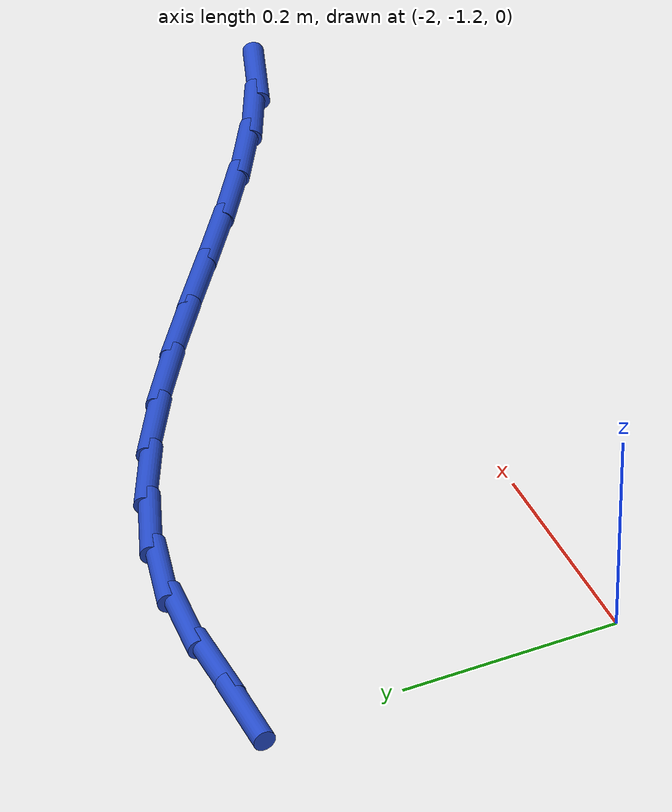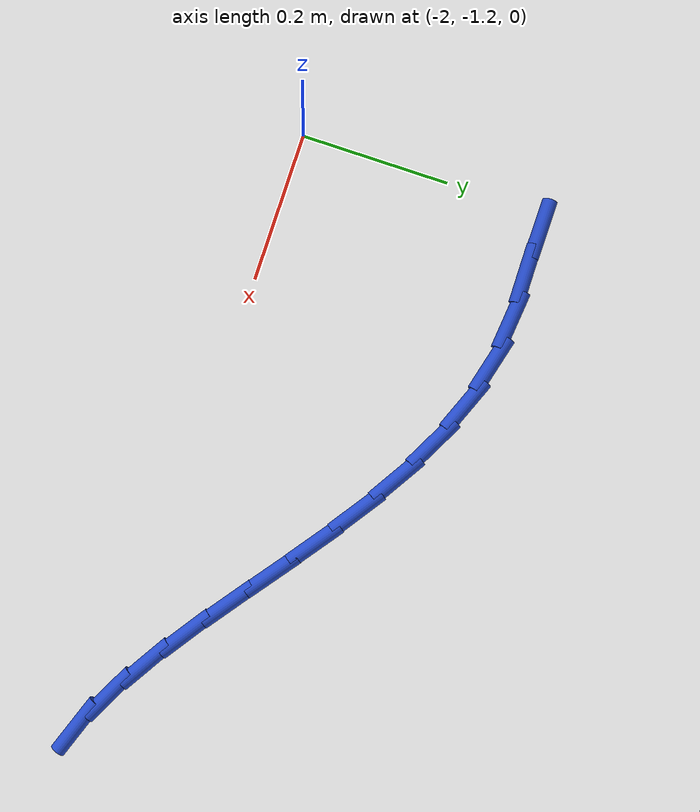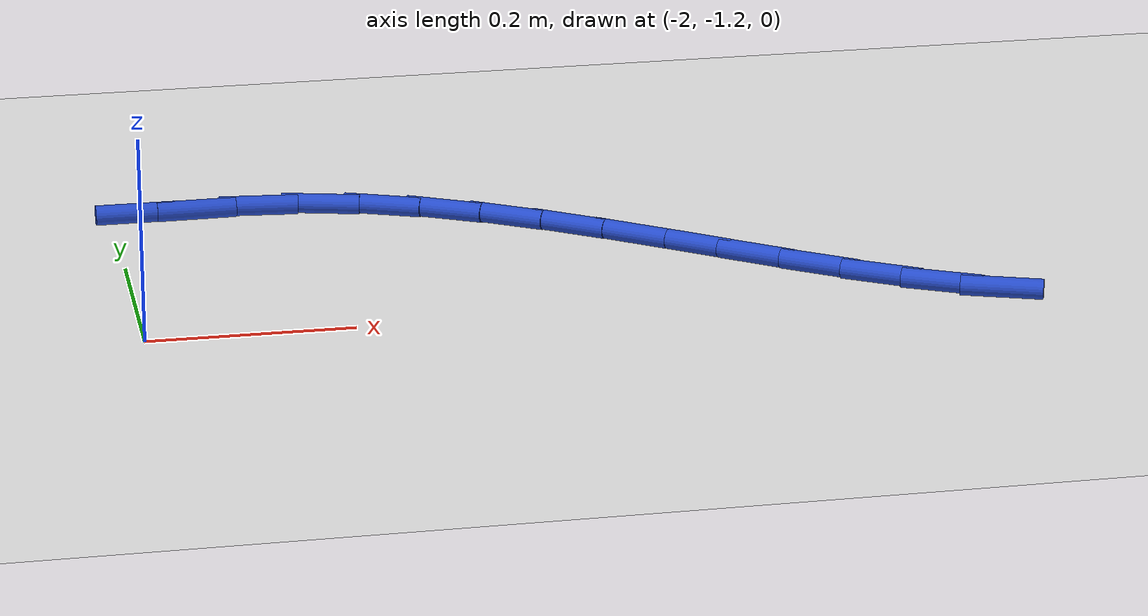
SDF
<sdf version="1.6">
 <world name="default">
  <model name="ground_plane">
   <static>1</static>
   <link name="link">
    <collision name="collision">
     <geometry><plane><normal>0 0 1</normal><size>100 100</size></plane></geometry>
     <surface><friction><ode><mu>100</mu><mu2>50</mu2></ode></friction></surface>
    </collision>
    <visual name="visual">
     <cast_shadows>0</cast_shadows>
     <geometry><plane><normal>0 0 1</normal><size>100 100</size></plane></geometry>
     <material>
      <script><uri>file://media/materials/scripts/gazebo.material</uri><name>Gazebo/WhiteGlow</name></script>
     </material>
    </visual>
   </link>
  </model>
  <model name="line">
   <link name="link_76">
    <pose>-1.9775998268561816 -0.866477955668696 0.01 0 1.57 -0.0059039084641443204</pose>
    <collision name="collision">
     <geometry><cylinder><radius>0.01</radius><length>0.08</length></cylinder></geometry>
    </collision>
    <visual name="visual">
     <material>
      <script><name>Gazebo/Blue</name><uri>file://media/materials/scripts/gazebo.material</uri></script>
     </material>
     <geometry><cylinder><radius>0.01</radius><length>0.08</length></cylinder></geometry>
    </visual>
   </link>
   <link name="link_77">
    <pose>-1.9158166465137412 -0.8668427221481879 0.01 0 1.57 0.011254242782377728</pose>
    <collision name="collision">
     <geometry><cylinder><radius>0.01</radius><length>0.08</length></cylinder></geometry>
    </collision>
    <visual name="visual">
     <material>
      <script><name>Gazebo/Blue</name><uri>file://media/materials/scripts/gazebo.material</uri></script>
     </material>
     <geometry><cylinder><radius>0.01</radius><length>0.08</length></cylinder></geometry>
    </visual>
   </link>
   <link name="link_78">
    <pose>-1.8523981307699697 -0.8661289646404935 0.01 0 1.57 -0.0977586956036715</pose>
    <collision name="collision">
     <geometry><cylinder><radius>0.01</radius><length>0.08</length></cylinder></geometry>
    </collision>
    <visual name="visual">
     <material>
      <script><name>Gazebo/Blue</name><uri>file://media/materials/scripts/gazebo.material</uri></script>
     </material>
     <geometry><cylinder><radius>0.01</radius><length>0.08</length></cylinder></geometry>
    </visual>
   </link>
   <link name="link_79">
    <pose>-1.7895672068124755 -0.8722908756344946 0.01 0 1.57 -0.2524339393090089</pose>
    <collision name="collision">
     <geometry><cylinder><radius>0.01</radius><length>0.08</length></cylinder></geometry>
    </collision>
    <visual name="visual">
     <material>
      <script><name>Gazebo/Blue</name><uri>file://media/materials/scripts/gazebo.material</uri></script>
     </material>
     <geometry><cylinder><radius>0.01</radius><length>0.08</length></cylinder></geometry>
    </visual>
   </link>
   <link name="link_80">
    <pose>-1.7282776958101271 -0.8880996573367588 0.01 0 1.57 -0.38137439897423137</pose>
    <collision name="collision">
     <geometry><cylinder><radius>0.01</radius><length>0.08</length></cylinder></geometry>
    </collision>
    <visual name="visual">
     <material>
      <script><name>Gazebo/Blue</name><uri>file://media/materials/scripts/gazebo.material</uri></script>
     </material>
     <geometry><cylinder><radius>0.01</radius><length>0.08</length></cylinder></geometry>
    </visual>
   </link>
   <link name="link_81">
    <pose>-1.6684466414271915 -0.9120923442389942 0.01 0 1.57 -0.4818976434798315</pose>
    <collision name="collision">
     <geometry><cylinder><radius>0.01</radius><length>0.08</length></cylinder></geometry>
    </collision>
    <visual name="visual">
     <material>
      <script><name>Gazebo/Blue</name><uri>file://media/materials/scripts/gazebo.material</uri></script>
     </material>
     <geometry><cylinder><radius>0.01</radius><length>0.08</length></cylinder></geometry>
    </visual>
   </link>
   <link name="link_82">
    <pose>-1.6099607207991675 -0.9426819548553529 0.01 0 1.57 -0.5562816230912501</pose>
    <collision name="collision">
     <geometry><cylinder><radius>0.01</radius><length>0.08</length></cylinder></geometry>
    </collision>
    <visual name="visual">
     <material>
      <script><name>Gazebo/Blue</name><uri>file://media/materials/scripts/gazebo.material</uri></script>
     </material>
     <geometry><cylinder><radius>0.01</radius><length>0.08</length></cylinder></geometry>
    </visual>
   </link>
   <link name="link_83">
    <pose>-1.5527066110615513 -0.9782815076999875 0.01 0 1.57 -0.6074615409673364</pose>
    <collision name="collision">
     <geometry><cylinder><radius>0.01</radius><length>0.08</length></cylinder></geometry>
    </collision>
    <visual name="visual">
     <material>
      <script><name>Gazebo/Blue</name><uri>file://media/materials/scripts/gazebo.material</uri></script>
     </material>
     <geometry><cylinder><radius>0.01</radius><length>0.08</length></cylinder></geometry>
    </visual>
   </link>
   <link name="link_84">
    <pose>-1.4965709893498396 -1.0173040212870508 0.01 0 1.57 -0.6377960886333075</pose>
    <collision name="collision">
     <geometry><cylinder><radius>0.01</radius><length>0.08</length></cylinder></geometry>
    </collision>
    <visual name="visual">
     <material>
      <script><name>Gazebo/Blue</name><uri>file://media/materials/scripts/gazebo.material</uri></script>
     </material>
     <geometry><cylinder><radius>0.01</radius><length>0.08</length></cylinder></geometry>
    </visual>
   </link>
   <link name="link_85">
    <pose>-1.4414405327995277 -1.0581625141306954 0.01 0 1.57 -0.6485384917398026</pose>
    <collision name="collision">
     <geometry><cylinder><radius>0.01</radius><length>0.08</length></cylinder></geometry>
    </collision>
    <visual name="visual">
     <material>
      <script><name>Gazebo/Blue</name><uri>file://media/materials/scripts/gazebo.material</uri></script>
     </material>
     <geometry><cylinder><radius>0.01</radius><length>0.08</length></cylinder></geometry>
    </visual>
   </link>
   <link name="link_86">
    <pose>-1.3872019185461137 -1.0992700047450725 0.01 0 1.57 -0.6395921952912017</pose>
    <collision name="collision">
     <geometry><cylinder><radius>0.01</radius><length>0.08</length></cylinder></geometry>
    </collision>
    <visual name="visual">
     <material>
      <script><name>Gazebo/Blue</name><uri>file://media/materials/scripts/gazebo.material</uri></script>
     </material>
     <geometry><cylinder><radius>0.01</radius><length>0.08</length></cylinder></geometry>
    </visual>
   </link>
   <link name="link_87">
    <pose>-1.333741823725094 -1.1390395116443357 0.01 0 1.57 -0.6093022134280829</pose>
    <collision name="collision">
     <geometry><cylinder><radius>0.01</radius><length>0.08</length></cylinder></geometry>
    </collision>
    <visual name="visual">
     <material>
      <script><name>Gazebo/Blue</name><uri>file://media/materials/scripts/gazebo.material</uri></script>
     </material>
     <geometry><cylinder><radius>0.01</radius><length>0.08</length></cylinder></geometry>
    </visual>
   </link>
   <link name="link_88">
    <pose>-1.280946925471964 -1.1758840533426367 0.01 0 1.57 -0.5541922854693865</pose>
    <collision name="collision">
     <geometry><cylinder><radius>0.01</radius><length>0.08</length></cylinder></geometry>
    </collision>
    <visual name="visual">
     <material>
      <script><name>Gazebo/Blue</name><uri>file://media/materials/scripts/gazebo.material</uri></script>
     </material>
     <geometry><cylinder><radius>0.01</radius><length>0.08</length></cylinder></geometry>
    </visual>
   </link>
   <link name="link_89">
    <pose>-1.2287039009222205 -1.2082166483541288 0.01 0 1.57 -0.46875266801529314</pose>
    <collision name="collision">
     <geometry><cylinder><radius>0.01</radius><length>0.08</length></cylinder></geometry>
    </collision>
    <visual name="visual">
     <material>
      <script><name>Gazebo/Blue</name><uri>file://media/materials/scripts/gazebo.material</uri></script>
     </material>
     <geometry><cylinder><radius>0.01</radius><length>0.08</length></cylinder></geometry>
    </visual>
   </link>
   <link name="link_90">
    <pose>-1.1768994272113609 -1.2344503151929629 0.01 0 1.57 -0.3458174383448194</pose>
    <collision name="collision">
     <geometry><cylinder><radius>0.01</radius><length>0.08</length></cylinder></geometry>
    </collision>
    <visual name="visual">
     <material>
      <script><name>Gazebo/Blue</name><uri>file://media/materials/scripts/gazebo.material</uri></script>
     </material>
     <geometry><cylinder><radius>0.01</radius><length>0.08</length></cylinder></geometry>
    </visual>
   </link>
  </model>
 </world>
</sdf>
